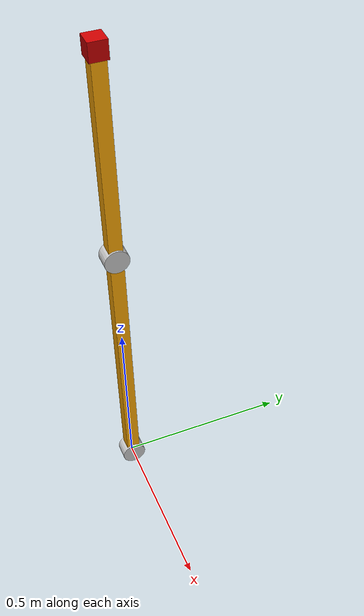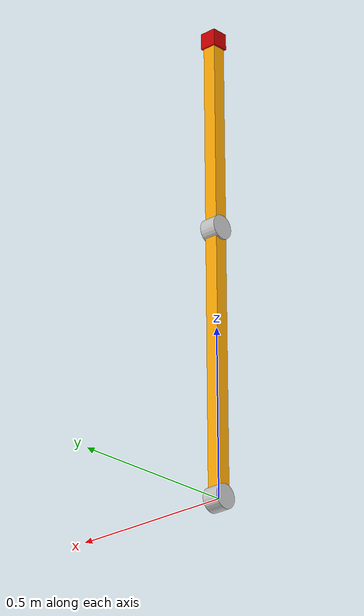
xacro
<?xml version="1.0"?>
<robot name="arm" xmlns:xacro="http://www.ros.org/wiki/xacro">

<!-- Geometrical properties -->

  <xacro:arg name="mass1" default="1."/>
  <xacro:arg name="mass2" default="0.5"/>
  <xacro:arg name="hand_length" default="0.8"/>
  <xacro:arg name="finger_length" default="0.6"/>

  <xacro:property name="PI" value="3.14159265359"/>
  <xacro:property name="link_side" value="0.04"/>
  <xacro:property name="joint_radius" value="0.036"/>
  <xacro:property name="joint_length" value="0.05"/>
  <xacro:property name="arm_length" value="0.001"/>
  <xacro:property name="finger_length" value="$(arg finger_length)"/>
  <xacro:property name="mass1" value="$(arg mass1)"/>
  <xacro:property name="mass2" value="$(arg mass2)"/>
  <xacro:property name="hand_length" value="$(arg hand_length)"/>
  <xacro:property name="camera_link" value="0.05"/>
  <xacro:property name="axel_offset" value="0.05"/>
  <xacro:property name="height3" value="1"/>

  <!-- Materials -->

  <material name="orange">
    <color rgba="1.00 0.67 0.02 1.00"/>
  </material>

  <material name="gray">
    <color rgba="0.80 0.80 0.80 1.00"/>
  </material>

  <material name="red">
	   <color rgba="0.8 0.0 0.0 1.0"/>
  </material>

  <!-- Joints Control in Gazebo -->

  <gazebo>
    <plugin name="gazebo_ros_control" filename="libgazebo_ros_control.so"/>
    <robotNamespace>/</robotNamespace>
  </gazebo>

  <!-- Generates a box visual/collision/inertial -->

  <xacro:macro name="prism_vci" params="side length mass *origin">

    <xacro:macro name="prism_geometry">
      <xacro:insert_block name="origin"/>
      <geometry>
        <box size="${side} ${side} ${length}"/>
      </geometry>
    </xacro:macro>

    <visual>
      <xacro:prism_geometry/>
      <material name="orange"/>
    </visual>

    <inertial>
      <xacro:insert_block name="origin"/>
      <mass value="${mass}"/>
      <inertia ixx="${(mass/12)*(side*side+length*length)}"
               iyy="${(mass/12)*(side*side+length*length)}"
               izz="${(mass/6)*(side*side)}"
               ixy="0" ixz="0" iyz="0"/>
    </inertial>

  </xacro:macro>

  <!-- Generates child joint of parent -->
  <xacro:macro name="arm_joint" params="child parent dist">

    <joint name="${parent}_${child}_joint" type="revolute">
      <origin xyz="0 0 ${dist}" rpy="0 0 0"/>
      <parent link="${parent}"/>
      <child link="${child}"/>
      <axis xyz="1 0 0"/>
      <limit effort="100.0"
             velocity="10.0"
             lower="${-PI}"
             upper="${PI}"/>
    </joint>

    <!-- Required for ROS control -->
    <transmission name="${parent}_${child}_transmission">
      <type>transmission_interface/SimpleTransmission</type>
      <joint name="${parent}_${child}_joint">
        <hardwareInterface>hardware_interface/EffortJointInterface</hardwareInterface>
      </joint>
      <actuator name="${parent}_${child}_actuator"/>
    </transmission>

  <!--Creating a visual for the joints-->
    <joint name="${parent}_${child}_fixed" type="fixed">
        <origin xyz="0 0 ${dist}" rpy="0 ${PI/2} 0"/>
        <parent link="${parent}"/>
        <child link="${child}_fixed"/>
    </joint>

    <link name="${child}_fixed">
      <visual>
        <geometry>
          <cylinder length="${joint_length}" radius="${joint_radius}"/>
        </geometry>
        <material name="gray"/>
      </visual>
    </link>

  </xacro:macro>

  <!-- World frame (for Gazebo) -->
  <link name="world"/>

  <!-- Arm fixed to world frame  -->
  <joint name="world_foot_joint" type="fixed">
    <parent link="world"/>
    <child link="arm"/>
  </joint>

  <!-- Joints Chain -->
  <xacro:arm_joint parent="arm" child="hand" dist="${arm_length}"/>
  <xacro:arm_joint parent="hand" child="finger" dist="$(arg hand_length)"/>

 <!--LINKS-->

 <!-- arm -->
 <link name="arm">
    <xacro:prism_vci length="${arm_length}" mass = "$(arg mass1)" side="${link_side}">
      <origin xyz="0 0 ${arm_length/2}" rpy="0 0 0"/>
    </xacro:prism_vci>
  </link>

  <gazebo reference="arm">
    <material>Gazebo/Red</material>
  </gazebo>

 <!-- hand -->
  <link name="hand">
    <xacro:prism_vci length="${hand_length}" mass = "$(arg mass2)" side="${link_side}">
      <origin xyz="0 0 ${hand_length/2}" rpy="0 0 0"/>
    </xacro:prism_vci>
  </link>

  <gazebo reference="hand">
    <material>Gazebo/Red</material>
  </gazebo>

  <!-- End effector -->
  <link name="finger">
    <xacro:prism_vci length="${finger_length}" mass = "$(arg mass2)" side="${link_side}">
      <origin xyz="0 0 ${finger_length/2}" rpy="0 0 0"/>
    </xacro:prism_vci>
  </link>

  <gazebo reference="finger">
    <material>Gazebo/Red</material>
  </gazebo>

  <!-- Camera not well defined-> go to 0, 0, 0 -->

   <link name="camera_link">
    <visual>
      <origin xyz="0 0 0" rpy="0 0 0"/>
      <geometry>
        <box size="${camera_link} ${camera_link} ${camera_link}"/>
      </geometry>
      <material name="red"/>
    </visual>
  </link>

   <joint name="camera_joint" type="fixed">
    <origin xyz="0 0 ${finger_length}" rpy="${-PI/2} 0 ${-PI/2}"/>
    <parent link="finger"/>
    <child link="camera_link"/>
  </joint>

   <!-- camera -->
  <gazebo reference="camera_link">
    <sensor type="camera" name="camera1">
      <update_rate>30.0</update_rate>
      <camera name="head">
        <!-- Gazebo uses X as the optical axis -->
          <visualize>true</visualize>
          <pose>0 0 0 0 ${-PI/2} ${PI/2}</pose>
        <horizontal_fov>1.3962634</horizontal_fov>
        <image>
          <width>800</width>
          <height>800</height>
          <format>R8G8B8</format>
        </image>
        <clip>
          <near>0.02</near>
          <far>300</far>
        </clip>
        <noise>
          <type>gaussian</type>
          <!-- Noise is sampled independently per pixel on each frame.
               That pixel's noise value is added to each of its color
               channels, which at that point lie in the range [0,1]. -->
          <mean>0.0</mean>
          <stddev>0.007</stddev>
        </noise>
      </camera>
      <plugin name="camera_controller" filename="libgazebo_ros_camera.so">
        <alwaysOn>true</alwaysOn>
        <updateRate>0.0</updateRate>
        <cameraName>robot/camera1</cameraName>
        <imageTopicName>image_raw</imageTopicName>
        <cameraInfoTopicName>camera_info</cameraInfoTopicName>
        <frameName>camera_link</frameName>
        <hackBaseline>0.07</hackBaseline>
        <distortionK1>0.0</distortionK1>
        <distortionK2>0.0</distortionK2>
        <distortionK3>0.0</distortionK3>
        <distortionT1>0.0</distortionT1>
        <distortionT2>0.0</distortionT2>
      </plugin>
    </sensor>
  </gazebo>
</robot>
